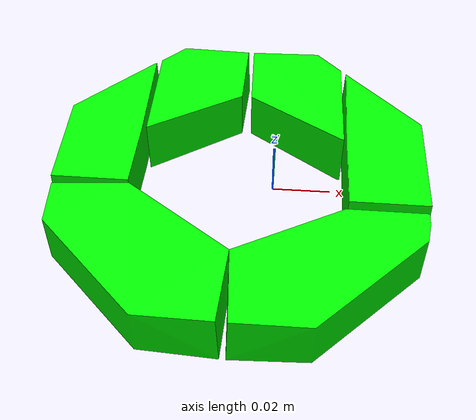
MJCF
<mujoco model="hanoi_disk">
  <asset>
    <mesh file="meshes/hanoi_disk_0.stl" name="hanoi_disk_0" scale="1.2 1.2 1.0"/>
    <mesh file="meshes/hanoi_disk_1.stl" name="hanoi_disk_1" scale="1.2 1.2 1.0"/>
    <mesh file="meshes/hanoi_disk_2.stl" name="hanoi_disk_2" scale="1.2 1.2 1.0"/>
    <mesh file="meshes/hanoi_disk_3.stl" name="hanoi_disk_3" scale="1.2 1.2 1.0"/>
    <mesh file="meshes/hanoi_disk_4.stl" name="hanoi_disk_4" scale="1.2 1.2 1.0"/>
    <mesh file="meshes/hanoi_disk_5.stl" name="hanoi_disk_5" scale="1.2 1.2 1.0"/>
  </asset>
  <worldbody>
    <body name="hanoi_disk">
      <body name="collision">
        <geom pos="0 0 0" mesh="hanoi_disk_0" type="mesh" density="50" rgba="0 1 0 1" group="1" condim="6"/>
        <geom pos="0 0 0" mesh="hanoi_disk_1" type="mesh" density="50" rgba="0 1 0 1" group="1" condim="6"/>
        <geom pos="0 0 0" mesh="hanoi_disk_2" type="mesh" density="50" rgba="0 1 0 1" group="1" condim="6"/>
        <geom pos="0 0 0" mesh="hanoi_disk_3" type="mesh" density="50" rgba="0 1 0 1" group="1" condim="6"/>
        <geom pos="0 0 0" mesh="hanoi_disk_4" type="mesh" density="50" rgba="0 1 0 1" group="1" condim="6"/>
        <geom pos="0 0 0" mesh="hanoi_disk_5" type="mesh" density="50" rgba="0 1 0 1" group="1" condim="6"/>
      </body>
      <body name="visual">
        <geom pos="0 0 0" mesh="hanoi_disk_0" type="mesh" rgba="0 1 0 1" conaffinity="0" contype="0" group="1" mass="0.0001"/>
        <geom pos="0 0 0" mesh="hanoi_disk_1" type="mesh" rgba="0 1 0 1" conaffinity="0" contype="0" group="1" mass="0.0001"/>
        <geom pos="0 0 0" mesh="hanoi_disk_2" type="mesh" rgba="0 1 0 1" conaffinity="0" contype="0" group="1" mass="0.0001"/>
        <geom pos="0 0 0" mesh="hanoi_disk_3" type="mesh" rgba="0 1 0 1" conaffinity="0" contype="0" group="1" mass="0.0001"/>
        <geom pos="0 0 0" mesh="hanoi_disk_4" type="mesh" rgba="0 1 0 1" conaffinity="0" contype="0" group="1" mass="0.0001"/>
        <geom pos="0 0 0" mesh="hanoi_disk_5" type="mesh" rgba="0 1 0 1" conaffinity="0" contype="0" group="1" mass="0.0001"/>
      </body>
      <site rgba="0 0 0 0" size="0.005" pos="0 0 -0.06" name="bottom_site"/>
      <site rgba="0 0 0 0" size="0.005" pos="0 0 0.04" name="top_site"/>
      <site rgba="0 0 0 0" size="0.005" pos="0.025 0.025 0" name="horizontal_radius_site"/>
    </body>
  </worldbody>
</mujoco>
